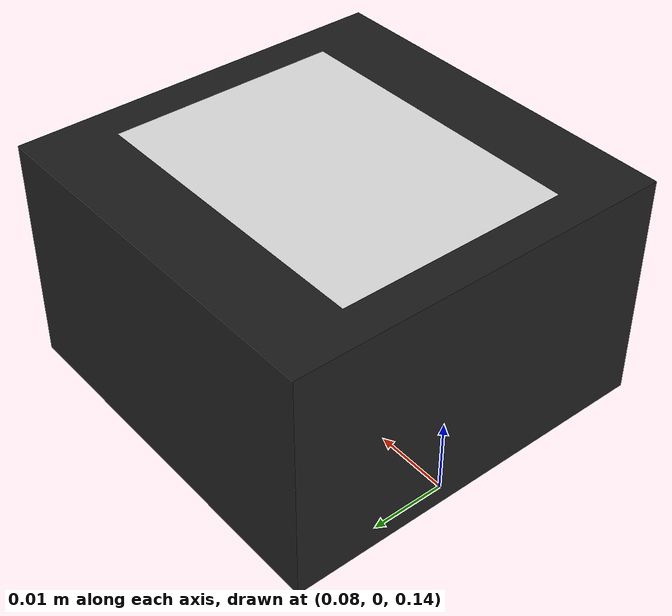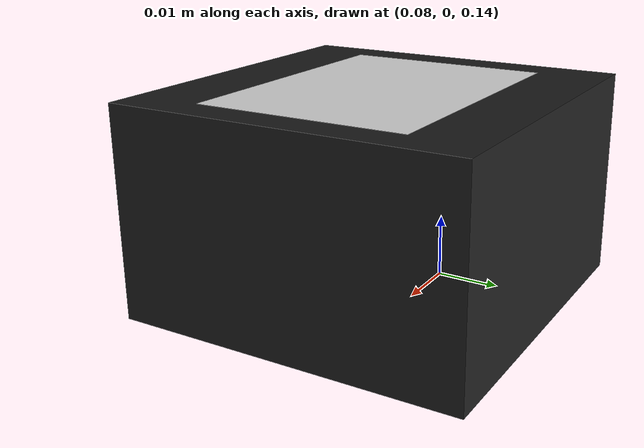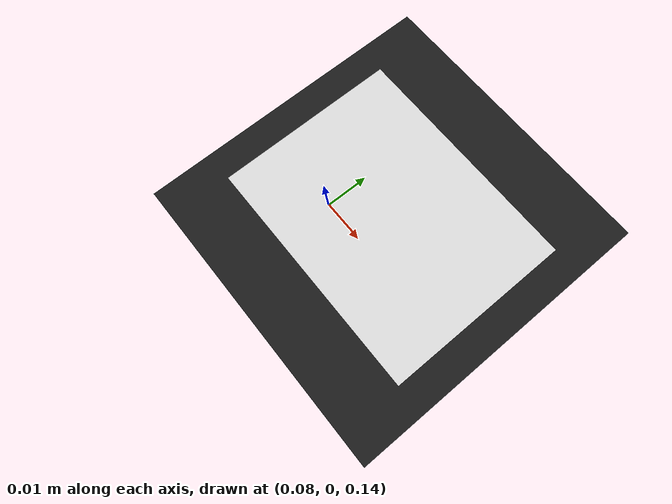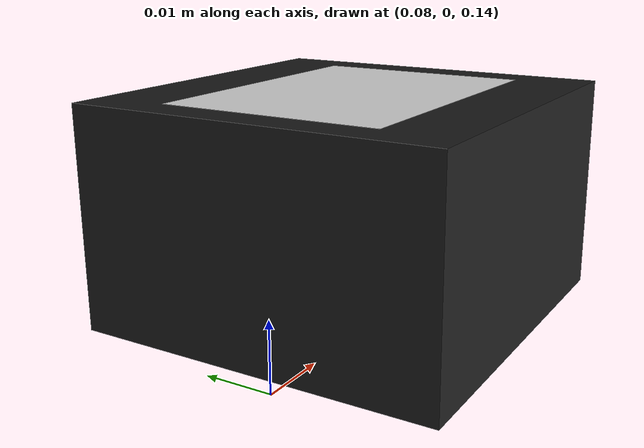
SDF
<?xml version='1.0'?>
<sdf version='1.7'>
  <model name='test_robot'>
    <static>true</static>
    <link name='camera_link'>
      <!-- Позиция камеры (x,y,z,r,p,y) -->
      <pose>0.1 0 0.16 0 0 0</pose>

      <!-- Визуальное представление камеры с текстурой -->
      <visual name='camera_visual'>
        <geometry>
          <box>
            <size>0.05 0.05 0.03</size>
          </box>
        </geometry>
        <material>
          <script>
            <uri>file://media/materials/scripts/gazebo.material</uri>
            <name>Gazebo/Black</name>
          </script>
          <!-- Увеличиваем ambient и diffuse для лучшего отображения текстур -->
          <ambient>1.0 1.0 1.0 1</ambient>
          <diffuse>1.0 1.0 1.0 1</diffuse>
          <specular>0.1 0.1 0.1 1</specular>
        </material>
        <cast_shadows>false</cast_shadows>
      </visual>

      <!-- Основной сенсор камеры с настройками для текстур -->
      <sensor name="camera" type="camera">
        <always_on>true</always_on>
        <update_rate>30</update_rate>
        <camera name="main">
          <horizontal_fov>1.57</horizontal_fov>  <!-- 60 градусов -->
          <image>
            <width>800</width>
            <height>600</height>
            <format>R8G8B8</format>
          </image>
          <clip>
            <near>0.1</near>
            <far>100</far>
          </clip>
          <!-- Настройки для лучшего качества текстур -->
          <save enabled="true"/>
          <depth_camera>
            <output>points</output>
          </depth_camera>
        </camera>
        <plugin name="camera_plugin" filename="libgazebo_ros_camera.so">
          <camera_name>textured_camera</camera_name>
          <image_topic_name>image_raw</image_topic_name>
          <camera_info_topic_name>camera_info</camera_info_topic_name>
          <frame_name>camera_link</frame_name>
          <hack_baseline>0.0</hack_baseline>
        </plugin>
      </sensor>

      <!-- Дополнительные настройки для корректного отображения -->
      <visual name='screen_visual'>
        <pose>0 0 0.015 0 0 0</pose>  <!-- Сдвигаем немного вперед -->
        <geometry>
          <plane>
            <normal>0 0 1</normal>
            <size>0.04 0.03</size>
          </plane>
        </geometry>
        <material>
          <script>
            <uri>file://media/materials/scripts/gazebo.material</uri>
            <name>Gazebo/White</name>
          </script>
          <ambient>1.0 1.0 1.0 1</ambient>
          <diffuse>1.0 1.0 1.0 1</diffuse>
          <emissive>0.1 0.1 0.1 1</emissive>
        </material>
      </visual>
    </link>
  </model>
</sdf>
